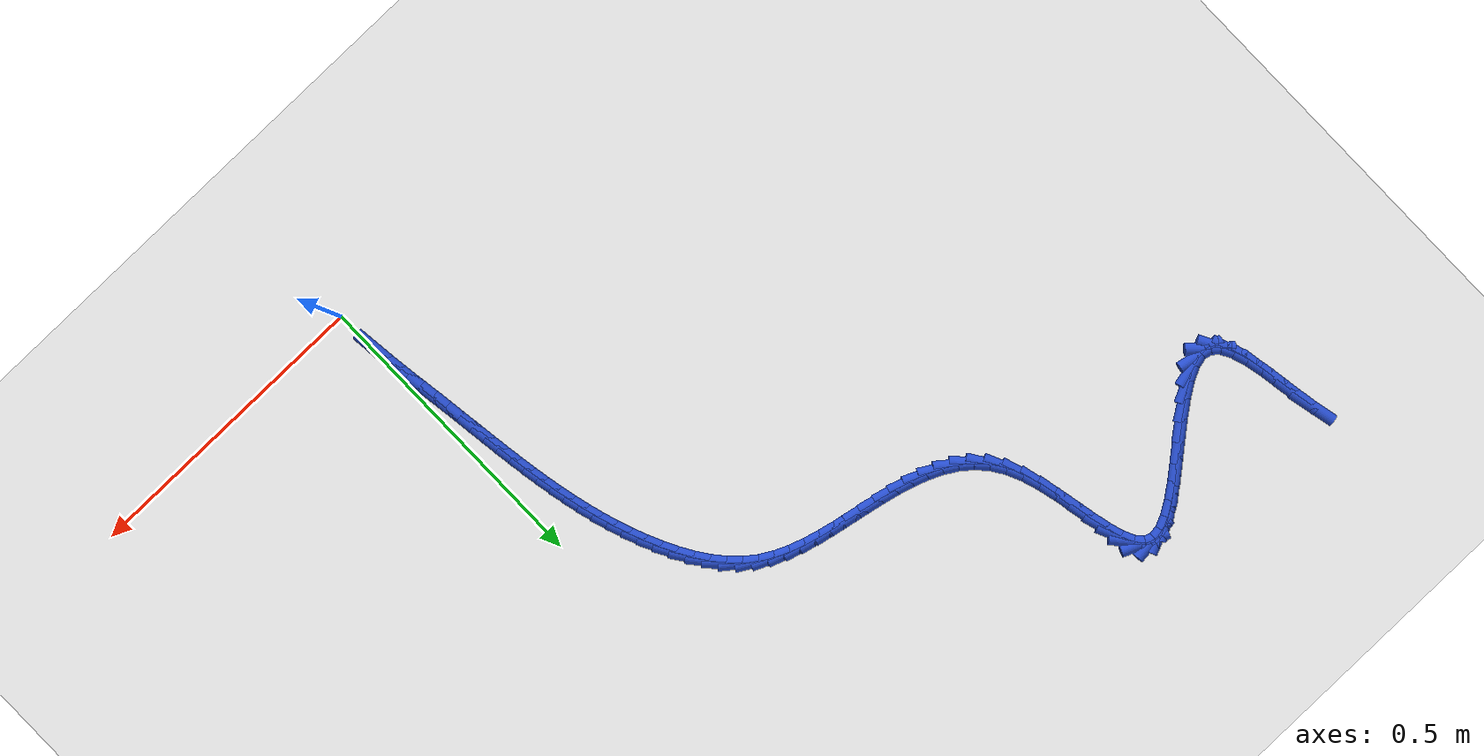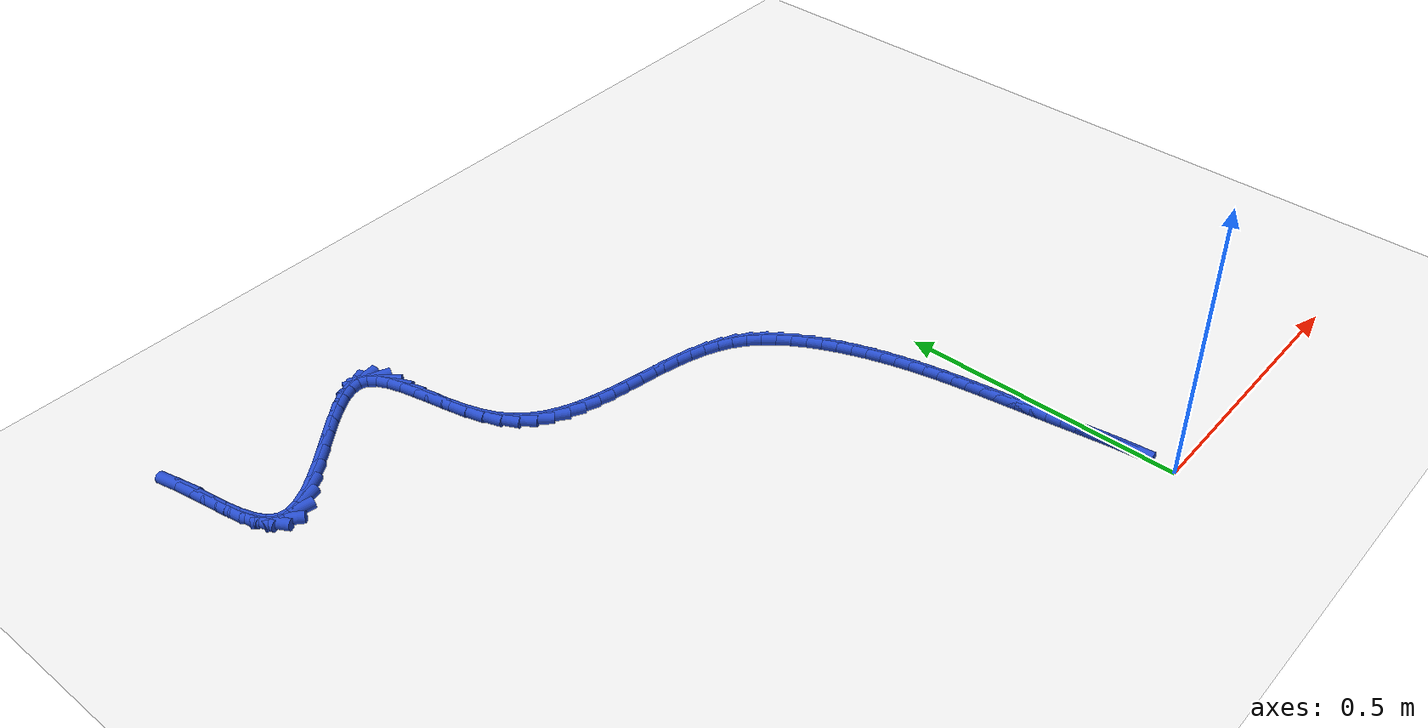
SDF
<sdf version="1.6">
 <world name="default">
  <model name="ground_plane">
   <static>1</static>
   <link name="link">
    <collision name="collision">
     <geometry><plane><normal>0 0 1</normal><size>100 100</size></plane></geometry>
     <surface><friction><ode><mu>100</mu><mu2>50</mu2></ode></friction></surface>
    </collision>
    <visual name="visual">
     <cast_shadows>0</cast_shadows>
     <geometry><plane><normal>0 0 1</normal><size>100 100</size></plane></geometry>
     <material>
      <script><uri>file://media/materials/scripts/gazebo.material</uri><name>Gazebo/WhiteGlow</name></script>
     </material>
    </visual>
   </link>
  </model>
  <model name="line">
   <link name="link_3">
    <pose>-0.004735273473870228 0.07722635135019318 0.01 0 1.57 -1.4588159628600574</pose>
    <collision name="collision">
     <geometry><cylinder><radius>0.01</radius><length>0.08</length></cylinder></geometry>
    </collision>
    <visual name="visual">
     <material>
      <script><name>Gazebo/Blue</name><uri>file://media/materials/scripts/gazebo.material</uri></script>
     </material>
     <geometry><cylinder><radius>0.01</radius><length>0.08</length></cylinder></geometry>
    </visual>
   </link>
   <link name="link_4">
    <pose>-0.007630779874316007 0.1029754500033443 0.01 0 1.57 -1.4424926155566993</pose>
    <collision name="collision">
     <geometry><cylinder><radius>0.01</radius><length>0.08</length></cylinder></geometry>
    </collision>
    <visual name="visual">
     <material>
      <script><name>Gazebo/Blue</name><uri>file://media/materials/scripts/gazebo.material</uri></script>
     </material>
     <geometry><cylinder><radius>0.01</radius><length>0.08</length></cylinder></geometry>
    </visual>
   </link>
   <link name="link_5">
    <pose>-0.010953468855772665 0.1287302499337943 0.01 0 1.57 -1.4315328510096803</pose>
    <collision name="collision">
     <geometry><cylinder><radius>0.01</radius><length>0.08</length></cylinder></geometry>
    </collision>
    <visual name="visual">
     <material>
      <script><name>Gazebo/Blue</name><uri>file://media/materials/scripts/gazebo.material</uri></script>
     </material>
     <geometry><cylinder><radius>0.01</radius><length>0.08</length></cylinder></geometry>
    </visual>
   </link>
   <link name="link_6">
    <pose>-0.014564525394100018 0.15449207744699653 0.01 0 1.57 -1.4258904491077136</pose>
    <collision name="collision">
     <geometry><cylinder><radius>0.01</radius><length>0.08</length></cylinder></geometry>
    </collision>
    <visual name="visual">
     <material>
      <script><name>Gazebo/Blue</name><uri>file://media/materials/scripts/gazebo.material</uri></script>
     </material>
     <geometry><cylinder><radius>0.01</radius><length>0.08</length></cylinder></geometry>
    </visual>
   </link>
   <link name="link_7">
    <pose>-0.01832513446515788 0.18026225884840422 0.01 0 1.57 -1.4255362973416508</pose>
    <collision name="collision">
     <geometry><cylinder><radius>0.01</radius><length>0.08</length></cylinder></geometry>
    </collision>
    <visual name="visual">
     <material>
      <script><name>Gazebo/Blue</name><uri>file://media/materials/scripts/gazebo.material</uri></script>
     </material>
     <geometry><cylinder><radius>0.01</radius><length>0.08</length></cylinder></geometry>
    </visual>
   </link>
   <link name="link_8">
    <pose>-0.02209648104480607 0.20604212044347073 0.01 0 1.57 -1.4300593175898704</pose>
    <collision name="collision">
     <geometry><cylinder><radius>0.01</radius><length>0.08</length></cylinder></geometry>
    </collision>
    <visual name="visual">
     <material>
      <script><name>Gazebo/Blue</name><uri>file://media/materials/scripts/gazebo.material</uri></script>
     </material>
     <geometry><cylinder><radius>0.01</radius><length>0.08</length></cylinder></geometry>
    </visual>
   </link>
   <link name="link_9">
    <pose>-0.025750255485725917 0.23183220384311948 0.01 0 1.57 -1.434548371362645</pose>
    <collision name="collision">
     <geometry><cylinder><radius>0.01</radius><length>0.08</length></cylinder></geometry>
    </collision>
    <visual name="visual">
     <material>
      <script><name>Gazebo/Blue</name><uri>file://media/materials/scripts/gazebo.material</uri></script>
     </material>
     <geometry><cylinder><radius>0.01</radius><length>0.08</length></cylinder></geometry>
    </visual>
   </link>
   <link name="link_10">
    <pose>-0.029286172010129993 0.25762348797129764 0.01 0 1.57 -1.4357179457904505</pose>
    <collision name="collision">
     <geometry><cylinder><radius>0.01</radius><length>0.08</length></cylinder></geometry>
    </collision>
    <visual name="visual">
     <material>
      <script><name>Gazebo/Blue</name><uri>file://media/materials/scripts/gazebo.material</uri></script>
     </material>
     <geometry><cylinder><radius>0.01</radius><length>0.08</length></cylinder></geometry>
    </visual>
   </link>
   <link name="link_11">
    <pose>-0.0327894310130966 0.28340056639963557 0.01 0 1.57 -1.4335013348796353</pose>
    <collision name="collision">
     <geometry><cylinder><radius>0.01</radius><length>0.08</length></cylinder></geometry>
    </collision>
    <visual name="visual">
     <material>
      <script><name>Gazebo/Blue</name><uri>file://media/materials/scripts/gazebo.material</uri></script>
     </material>
     <geometry><cylinder><radius>0.01</radius><length>0.08</length></cylinder></geometry>
    </visual>
   </link>
   <link name="link_12">
    <pose>-0.03634679331964059 0.30914791614413134 0.01 0 1.57 -1.4278890659737389</pose>
    <collision name="collision">
     <geometry><cylinder><radius>0.01</radius><length>0.08</length></cylinder></geometry>
    </collision>
    <visual name="visual">
     <material>
      <script><name>Gazebo/Blue</name><uri>file://media/materials/scripts/gazebo.material</uri></script>
     </material>
     <geometry><cylinder><radius>0.01</radius><length>0.08</length></cylinder></geometry>
    </visual>
   </link>
   <link name="link_13">
    <pose>-0.04004501975477684 0.33485001422078325 0.01 0 1.57 -1.4188697028831119</pose>
    <collision name="collision">
     <geometry><cylinder><radius>0.01</radius><length>0.08</length></cylinder></geometry>
    </collision>
    <visual name="visual">
     <material>
      <script><name>Gazebo/Blue</name><uri>file://media/materials/scripts/gazebo.material</uri></script>
     </material>
     <geometry><cylinder><radius>0.01</radius><length>0.08</length></cylinder></geometry>
    </visual>
   </link>
   <link name="link_14">
    <pose>-0.043970871143520225 0.36049133764558977 0.01 0 1.57 -1.4064317796355033</pose>
    <collision name="collision">
     <geometry><cylinder><radius>0.01</radius><length>0.08</length></cylinder></geometry>
    </collision>
    <visual name="visual">
     <material>
      <script><name>Gazebo/Blue</name><uri>file://media/materials/scripts/gazebo.material</uri></script>
     </material>
     <geometry><cylinder><radius>0.01</radius><length>0.08</length></cylinder></geometry>
    </visual>
   </link>
   <link name="link_15">
    <pose>-0.048211108310885604 0.38605636343454885 0.01 0 1.57 -1.3905669526017241</pose>
    <collision name="collision">
     <geometry><cylinder><radius>0.01</radius><length>0.08</length></cylinder></geometry>
    </collision>
    <visual name="visual">
     <material>
      <script><name>Gazebo/Blue</name><uri>file://media/materials/scripts/gazebo.material</uri></script>
     </material>
     <geometry><cylinder><radius>0.01</radius><length>0.08</length></cylinder></geometry>
    </visual>
   </link>
   <link name="link_16">
    <pose>-0.052852492081887865 0.41152956860365897 0.01 0 1.57 -1.371274387821712</pose>
    <collision name="collision">
     <geometry><cylinder><radius>0.01</radius><length>0.08</length></cylinder></geometry>
    </collision>
    <visual name="visual">
     <material>
      <script><name>Gazebo/Blue</name><uri>file://media/materials/scripts/gazebo.material</uri></script>
     </material>
     <geometry><cylinder><radius>0.01</radius><length>0.08</length></cylinder></geometry>
    </visual>
   </link>
   <link name="link_17">
    <pose>-0.05798178328154187 0.4368954301689182 0.01 0 1.57 -1.3485663591753199</pose>
    <collision name="collision">
     <geometry><cylinder><radius>0.01</radius><length>0.08</length></cylinder></geometry>
    </collision>
    <visual name="visual">
     <material>
      <script><name>Gazebo/Blue</name><uri>file://media/materials/scripts/gazebo.material</uri></script>
     </material>
     <geometry><cylinder><radius>0.01</radius><length>0.08</length></cylinder></geometry>
    </visual>
   </link>
   <link name="link_18">
    <pose>-0.06368574273486247 0.46213842514632475 0.01 0 1.57 -1.3224749528913857</pose>
    <collision name="collision">
     <geometry><cylinder><radius>0.01</radius><length>0.08</length></cylinder></geometry>
    </collision>
    <visual name="visual">
     <material>
      <script><name>Gazebo/Blue</name><uri>file://media/materials/scripts/gazebo.material</uri></script>
     </material>
     <geometry><cylinder><radius>0.01</radius><length>0.08</length></cylinder></geometry>
    </visual>
   </link>
   <link name="link_19">
    <pose>-0.07005113126686455 0.48724303055187707 0.01 0 1.57 -1.2930596469748314</pose>
    <collision name="collision">
     <geometry><cylinder><radius>0.01</radius><length>0.08</length></cylinder></geometry>
    </collision>
    <visual name="visual">
     <material>
      <script><name>Gazebo/Blue</name><uri>file://media/materials/scripts/gazebo.material</uri></script>
     </material>
     <geometry><cylinder><radius>0.01</radius><length>0.08</length></cylinder></geometry>
    </visual>
   </link>
   <link name="link_20">
    <pose>-0.07716470970256303 0.5121937234015734 0.01 0 1.57 -1.2604153596693264</pose>
    <collision name="collision">
     <geometry><cylinder><radius>0.01</radius><length>0.08</length></cylinder></geometry>
    </collision>
    <visual name="visual">
     <material>
      <script><name>Gazebo/Blue</name><uri>file://media/materials/scripts/gazebo.material</uri></script>
     </material>
     <geometry><cylinder><radius>0.01</radius><length>0.08</length></cylinder></geometry>
    </visual>
   </link>
   <link name="link_21">
    <pose>-0.08511323886697272 0.5369749807114119 0.01 0 1.57 -1.2246803508958726</pose>
    <collision name="collision">
     <geometry><cylinder><radius>0.01</radius><length>0.08</length></cylinder></geometry>
    </collision>
    <visual name="visual">
     <material>
      <script><name>Gazebo/Blue</name><uri>file://media/materials/scripts/gazebo.material</uri></script>
     </material>
     <geometry><cylinder><radius>0.01</radius><length>0.08</length></cylinder></geometry>
    </visual>
   </link>
   <link name="link_22">
    <pose>-0.09398347958510848 0.5615712794973908 0.01 0 1.57 -1.1860431448297077</pose>
    <collision name="collision">
     <geometry><cylinder><radius>0.01</radius><length>0.08</length></cylinder></geometry>
    </collision>
    <visual name="visual">
     <material>
      <script><name>Gazebo/Blue</name><uri>file://media/materials/scripts/gazebo.material</uri></script>
     </material>
     <geometry><cylinder><radius>0.01</radius><length>0.08</length></cylinder></geometry>
    </visual>
   </link>
   <link name="link_23">
    <pose>-0.10386219268198521 0.5859670967755084 0.01 0 1.57 -1.144584126258298</pose>
    <collision name="collision">
     <geometry><cylinder><radius>0.01</radius><length>0.08</length></cylinder></geometry>
    </collision>
    <visual name="visual">
     <material>
      <script><name>Gazebo/Blue</name><uri>file://media/materials/scripts/gazebo.material</uri></script>
     </material>
     <geometry><cylinder><radius>0.01</radius><length>0.08</length></cylinder></geometry>
    </visual>
   </link>
   <link name="link_24">
    <pose>-0.11483722571845668 0.6101388116421479 0.01 0 1.57 -1.0965347804306003</pose>
    <collision name="collision">
     <geometry><cylinder><radius>0.01</radius><length>0.08</length></cylinder></geometry>
    </collision>
    <visual name="visual">
     <material>
      <script><name>Gazebo/Blue</name><uri>file://media/materials/scripts/gazebo.material</uri></script>
     </material>
     <geometry><cylinder><radius>0.01</radius><length>0.08</length></cylinder></geometry>
    </visual>
   </link>
   <link name="link_25">
    <pose>-0.12702169165128144 0.6338745355965881 0.01 0 1.57 -1.0370387465355602</pose>
    <collision name="collision">
     <geometry><cylinder><radius>0.01</radius><length>0.08</length></cylinder></geometry>
    </collision>
    <visual name="visual">
     <material>
      <script><name>Gazebo/Blue</name><uri>file://media/materials/scripts/gazebo.material</uri></script>
     </material>
     <geometry><cylinder><radius>0.01</radius><length>0.08</length></cylinder></geometry>
    </visual>
   </link>
   <link name="link_26">
    <pose>-0.14055412001495723 0.656772985994607 0.01 0 1.57 -0.9643003962133214</pose>
    <collision name="collision">
     <geometry><cylinder><radius>0.01</radius><length>0.08</length></cylinder></geometry>
    </collision>
    <visual name="visual">
     <material>
      <script><name>Gazebo/Blue</name><uri>file://media/materials/scripts/gazebo.material</uri></script>
     </material>
     <geometry><cylinder><radius>0.01</radius><length>0.08</length></cylinder></geometry>
    </visual>
   </link>
   <link name="link_27">
    <pose>-0.15557415731652494 0.6784245569605744 0.01 0 1.57 -0.8765091758855857</pose>
    <collision name="collision">
     <geometry><cylinder><radius>0.01</radius><length>0.08</length></cylinder></geometry>
    </collision>
    <visual name="visual">
     <material>
      <script><name>Gazebo/Blue</name><uri>file://media/materials/scripts/gazebo.material</uri></script>
     </material>
     <geometry><cylinder><radius>0.01</radius><length>0.08</length></cylinder></geometry>
    </visual>
   </link>
   <link name="link_28">
    <pose>-0.17222145006302572 0.6984196426188605 0.01 0 1.57 -0.7720484433847453</pose>
    <collision name="collision">
     <geometry><cylinder><radius>0.01</radius><length>0.08</length></cylinder></geometry>
    </collision>
    <visual name="visual">
     <material>
      <script><name>Gazebo/Blue</name><uri>file://media/materials/scripts/gazebo.material</uri></script>
     </material>
     <geometry><cylinder><radius>0.01</radius><length>0.08</length></cylinder></geometry>
    </visual>
   </link>
   <link name="link_29">
    <pose>-0.1906356447615004 0.7163486370938352 0.01 0 1.57 -0.6502314944295363</pose>
    <collision name="collision">
     <geometry><cylinder><radius>0.01</radius><length>0.08</length></cylinder></geometry>
    </collision>
    <visual name="visual">
     <material>
      <script><name>Gazebo/Blue</name><uri>file://media/materials/scripts/gazebo.material</uri></script>
     </material>
     <geometry><cylinder><radius>0.01</radius><length>0.08</length></cylinder></geometry>
    </visual>
   </link>
   <link name="link_30">
    <pose>-0.21095560658239632 0.7318033851926395 0.01 0 1.57 -0.5229237221968535</pose>
    <collision name="collision">
     <geometry><cylinder><radius>0.01</radius><length>0.08</length></cylinder></geometry>
    </collision>
    <visual name="visual">
     <material>
      <script><name>Gazebo/Blue</name><uri>file://media/materials/scripts/gazebo.material</uri></script>
     </material>
     <geometry><cylinder><radius>0.01</radius><length>0.08</length></cylinder></geometry>
    </visual>
   </link>
   <link name="link_31">
    <pose>-0.23318879074318358 0.7446197163972538 0.01 0 1.57 -0.41536183510269686</pose>
    <collision name="collision">
     <geometry><cylinder><radius>0.01</radius><length>0.08</length></cylinder></geometry>
    </collision>
    <visual name="visual">
     <material>
      <script><name>Gazebo/Blue</name><uri>file://media/materials/scripts/gazebo.material</uri></script>
     </material>
     <geometry><cylinder><radius>0.01</radius><length>0.08</length></cylinder></geometry>
    </visual>
   </link>
   <link name="link_32">
    <pose>-0.25706471528446667 0.7551494972948176 0.01 0 1.57 -0.3308768605326395</pose>
    <collision name="collision">
     <geometry><cylinder><radius>0.01</radius><length>0.08</length></cylinder></geometry>
    </collision>
    <visual name="visual">
     <material>
      <script><name>Gazebo/Blue</name><uri>file://media/materials/scripts/gazebo.material</uri></script>
     </material>
     <geometry><cylinder><radius>0.01</radius><length>0.08</length></cylinder></geometry>
    </visual>
   </link>
   <link name="link_33">
    <pose>-0.2822775476837907 0.7638102287371364 0.01 0 1.57 -0.26808662233687364</pose>
    <collision name="collision">
     <geometry><cylinder><radius>0.01</radius><length>0.08</length></cylinder></geometry>
    </collision>
    <visual name="visual">
     <material>
      <script><name>Gazebo/Blue</name><uri>file://media/materials/scripts/gazebo.material</uri></script>
     </material>
     <geometry><cylinder><radius>0.01</radius><length>0.08</length></cylinder></geometry>
    </visual>
   </link>
   <link name="link_34">
    <pose>-0.3085214554187006 0.7710194115760153 0.01 0 1.57 -0.22509022364306017</pose>
    <collision name="collision">
     <geometry><cylinder><radius>0.01</radius><length>0.08</length></cylinder></geometry>
    </collision>
    <visual name="visual">
     <material>
      <script><name>Gazebo/Blue</name><uri>file://media/materials/scripts/gazebo.material</uri></script>
     </material>
     <geometry><cylinder><radius>0.01</radius><length>0.08</length></cylinder></geometry>
    </visual>
   </link>
   <link name="link_35">
    <pose>-0.3354906059667416 0.777194546663259 0.01 0 1.57 -0.2002332795812609</pose>
    <collision name="collision">
     <geometry><cylinder><radius>0.01</radius><length>0.08</length></cylinder></geometry>
    </collision>
    <visual name="visual">
     <material>
      <script><name>Gazebo/Blue</name><uri>file://media/materials/scripts/gazebo.material</uri></script>
     </material>
     <geometry><cylinder><radius>0.01</radius><length>0.08</length></cylinder></geometry>
    </visual>
   </link>
   <link name="link_36">
    <pose>-0.3628791668054589 0.7827531348506732 0.01 0 1.57 -0.19246505629929442</pose>
    <collision name="collision">
     <geometry><cylinder><radius>0.01</radius><length>0.08</length></cylinder></geometry>
    </collision>
    <visual name="visual">
     <material>
      <script><name>Gazebo/Blue</name><uri>file://media/materials/scripts/gazebo.material</uri></script>
     </material>
     <geometry><cylinder><radius>0.01</radius><length>0.08</length></cylinder></geometry>
    </visual>
   </link>
   <link name="link_37">
    <pose>-0.39038130541239763 0.7881126769900628 0.01 0 1.57 -0.20147709216322968</pose>
    <collision name="collision">
     <geometry><cylinder><radius>0.01</radius><length>0.08</length></cylinder></geometry>
    </collision>
    <visual name="visual">
     <material>
      <script><name>Gazebo/Blue</name><uri>file://media/materials/scripts/gazebo.material</uri></script>
     </material>
     <geometry><cylinder><radius>0.01</radius><length>0.08</length></cylinder></geometry>
    </visual>
   </link>
   <link name="link_38">
    <pose>-0.4176911892651026 0.793690673933233 0.01 0 1.57 -0.22774110966531572</pose>
    <collision name="collision">
     <geometry><cylinder><radius>0.01</radius><length>0.08</length></cylinder></geometry>
    </collision>
    <visual name="visual">
     <material>
      <script><name>Gazebo/Blue</name><uri>file://media/materials/scripts/gazebo.material</uri></script>
     </material>
     <geometry><cylinder><radius>0.01</radius><length>0.08</length></cylinder></geometry>
    </visual>
   </link>
   <link name="link_39">
    <pose>-0.44450298584111936 0.7999046265319889 0.01 0 1.57 -0.27248106619999063</pose>
    <collision name="collision">
     <geometry><cylinder><radius>0.01</radius><length>0.08</length></cylinder></geometry>
    </collision>
    <visual name="visual">
     <material>
      <script><name>Gazebo/Blue</name><uri>file://media/materials/scripts/gazebo.material</uri></script>
     </material>
     <geometry><cylinder><radius>0.01</radius><length>0.08</length></cylinder></geometry>
    </visual>
   </link>
   <link name="link_40">
    <pose>-0.4705108626179928 0.8071720356381353 0.01 0 1.57 -0.3375341134608561</pose>
    <collision name="collision">
     <geometry><cylinder><radius>0.01</radius><length>0.08</length></cylinder></geometry>
    </collision>
    <visual name="visual">
     <material>
      <script><name>Gazebo/Blue</name><uri>file://media/materials/scripts/gazebo.material</uri></script>
     </material>
     <geometry><cylinder><radius>0.01</radius><length>0.08</length></cylinder></geometry>
    </visual>
   </link>
   <link name="link_41">
    <pose>-0.49540898707326814 0.8159104021034782 0.01 0 1.57 -0.4249654628243723</pose>
    <collision name="collision">
     <geometry><cylinder><radius>0.01</radius><length>0.08</length></cylinder></geometry>
    </collision>
    <visual name="visual">
     <material>
      <script><name>Gazebo/Blue</name><uri>file://media/materials/scripts/gazebo.material</uri></script>
     </material>
     <geometry><cylinder><radius>0.01</radius><length>0.08</length></cylinder></geometry>
    </visual>
   </link>
   <link name="link_42">
    <pose>-0.5188915266844903 0.8265372267798221 0.01 0 1.57 -0.536222835143369</pose>
    <collision name="collision">
     <geometry><cylinder><radius>0.01</radius><length>0.08</length></cylinder></geometry>
    </collision>
    <visual name="visual">
     <material>
      <script><name>Gazebo/Blue</name><uri>file://media/materials/scripts/gazebo.material</uri></script>
     </material>
     <geometry><cylinder><radius>0.01</radius><length>0.08</length></cylinder></geometry>
    </visual>
   </link>
   <link name="link_43">
    <pose>-0.5406526489292046 0.8394700105189723 0.01 0 1.57 -0.6706845842611207</pose>
    <collision name="collision">
     <geometry><cylinder><radius>0.01</radius><length>0.08</length></cylinder></geometry>
    </collision>
    <visual name="visual">
     <material>
      <script><name>Gazebo/Blue</name><uri>file://media/materials/scripts/gazebo.material</uri></script>
     </material>
     <geometry><cylinder><radius>0.01</radius><length>0.08</length></cylinder></geometry>
    </visual>
   </link>
   <link name="link_44">
    <pose>-0.5603865212849561 0.8551262541727339 0.01 0 1.57 -0.8239561665728614</pose>
    <collision name="collision">
     <geometry><cylinder><radius>0.01</radius><length>0.08</length></cylinder></geometry>
    </collision>
    <visual name="visual">
     <material>
      <script><name>Gazebo/Blue</name><uri>file://media/materials/scripts/gazebo.material</uri></script>
     </material>
     <geometry><cylinder><radius>0.01</radius><length>0.08</length></cylinder></geometry>
    </visual>
   </link>
   <link name="link_45">
    <pose>-0.5777873112292901 0.8739234585929123 0.01 0 1.57 -0.9872010220546819</pose>
    <collision name="collision">
     <geometry><cylinder><radius>0.01</radius><length>0.08</length></cylinder></geometry>
    </collision>
    <visual name="visual">
     <material>
      <script><name>Gazebo/Blue</name><uri>file://media/materials/scripts/gazebo.material</uri></script>
     </material>
     <geometry><cylinder><radius>0.01</radius><length>0.08</length></cylinder></geometry>
    </visual>
   </link>
   <link name="link_46">
    <pose>-0.5925491862397513 0.8962791246313124 0.01 0 1.57 -1.1441873027081468</pose>
    <collision name="collision">
     <geometry><cylinder><radius>0.01</radius><length>0.08</length></cylinder></geometry>
    </collision>
    <visual name="visual">
     <material>
      <script><name>Gazebo/Blue</name><uri>file://media/materials/scripts/gazebo.material</uri></script>
     </material>
     <geometry><cylinder><radius>0.01</radius><length>0.08</length></cylinder></geometry>
    </visual>
   </link>
   <link name="link_47">
    <pose>-0.6044505152647952 0.9224633322063294 0.01 0 1.57 -1.257912851594964</pose>
    <collision name="collision">
     <geometry><cylinder><radius>0.01</radius><length>0.08</length></cylinder></geometry>
    </collision>
    <visual name="visual">
     <material>
      <script><name>Gazebo/Blue</name><uri>file://media/materials/scripts/gazebo.material</uri></script>
     </material>
     <geometry><cylinder><radius>0.01</radius><length>0.08</length></cylinder></geometry>
    </visual>
   </link>
   <link name="link_48">
    <pose>-0.6138937971129101 0.9516534272788523 0.01 0 1.57 -1.3274149270042646</pose>
    <collision name="collision">
     <geometry><cylinder><radius>0.01</radius><length>0.08</length></cylinder></geometry>
    </collision>
    <visual name="visual">
     <material>
      <script><name>Gazebo/Blue</name><uri>file://media/materials/scripts/gazebo.material</uri></script>
     </material>
     <geometry><cylinder><radius>0.01</radius><length>0.08</length></cylinder></geometry>
    </visual>
   </link>
   <link name="link_49">
    <pose>-0.6215619844931102 0.9825357337961745 0.01 0 1.57 -1.3634028053142357</pose>
    <collision name="collision">
     <geometry><cylinder><radius>0.01</radius><length>0.08</length></cylinder></geometry>
    </collision>
    <visual name="visual">
     <material>
      <script><name>Gazebo/Blue</name><uri>file://media/materials/scripts/gazebo.material</uri></script>
     </material>
     <geometry><cylinder><radius>0.01</radius><length>0.08</length></cylinder></geometry>
    </visual>
   </link>
   <link name="link_50">
    <pose>-0.628139368449632 1.0137942325324154 0.01 0 1.57 -1.3700052944942394</pose>
    <collision name="collision">
     <geometry><cylinder><radius>0.01</radius><length>0.08</length></cylinder></geometry>
    </collision>
    <visual name="visual">
     <material>
      <script><name>Gazebo/Blue</name><uri>file://media/materials/scripts/gazebo.material</uri></script>
     </material>
     <geometry><cylinder><radius>0.01</radius><length>0.08</length></cylinder></geometry>
    </visual>
   </link>
   <link name="link_51">
    <pose>-0.6343102400267131 1.044112904261694 0.01 0 1.57 -1.3449242299833537</pose>
    <collision name="collision">
     <geometry><cylinder><radius>0.01</radius><length>0.08</length></cylinder></geometry>
    </collision>
    <visual name="visual">
     <material>
      <script><name>Gazebo/Blue</name><uri>file://media/materials/scripts/gazebo.material</uri></script>
     </material>
     <geometry><cylinder><radius>0.01</radius><length>0.08</length></cylinder></geometry>
    </visual>
   </link>
   <link name="link_52">
    <pose>-0.6407588902685908 1.0721757297581296 0.01 0 1.57 -1.2769650693977275</pose>
    <collision name="collision">
     <geometry><cylinder><radius>0.01</radius><length>0.08</length></cylinder></geometry>
    </collision>
    <visual name="visual">
     <material>
      <script><name>Gazebo/Blue</name><uri>file://media/materials/scripts/gazebo.material</uri></script>
     </material>
     <geometry><cylinder><radius>0.01</radius><length>0.08</length></cylinder></geometry>
    </visual>
   </link>
   <link name="link_53">
    <pose>-0.6481696102195021 1.096666689795842 0.01 0 1.57 -1.1379887968928584</pose>
    <collision name="collision">
     <geometry><cylinder><radius>0.01</radius><length>0.08</length></cylinder></geometry>
    </collision>
    <visual name="visual">
     <material>
      <script><name>Gazebo/Blue</name><uri>file://media/materials/scripts/gazebo.material</uri></script>
     </material>
     <geometry><cylinder><radius>0.01</radius><length>0.08</length></cylinder></geometry>
    </visual>
   </link>
   <link name="link_54">
    <pose>-0.6572266909236844 1.1162697651489504 0.01 0 1.57 -0.8663699969377535</pose>
    <collision name="collision">
     <geometry><cylinder><radius>0.01</radius><length>0.08</length></cylinder></geometry>
    </collision>
    <visual name="visual">
     <material>
      <script><name>Gazebo/Blue</name><uri>file://media/materials/scripts/gazebo.material</uri></script>
     </material>
     <geometry><cylinder><radius>0.01</radius><length>0.08</length></cylinder></geometry>
    </visual>
   </link>
   <link name="link_55">
    <pose>-0.6686144234253746 1.1296689365915744 0.01 0 1.57 -0.3878283134372157</pose>
    <collision name="collision">
     <geometry><cylinder><radius>0.01</radius><length>0.08</length></cylinder></geometry>
    </collision>
    <visual name="visual">
     <material>
      <script><name>Gazebo/Blue</name><uri>file://media/materials/scripts/gazebo.material</uri></script>
     </material>
     <geometry><cylinder><radius>0.01</radius><length>0.08</length></cylinder></geometry>
    </visual>
   </link>
   <link name="link_56">
    <pose>-0.683015350493324 1.1355519823967175 0.01 0 1.57 0.12107804830215767</pose>
    <collision name="collision">
     <geometry><cylinder><radius>0.01</radius><length>0.08</length></cylinder></geometry>
    </collision>
    <visual name="visual">
     <material>
      <script><name>Gazebo/Blue</name><uri>file://media/materials/scripts/gazebo.material</uri></script>
     </material>
     <geometry><cylinder><radius>0.01</radius><length>0.08</length></cylinder></geometry>
    </visual>
   </link>
   <link name="link_57">
    <pose>-0.7007494523329277 1.133394217436345 0.01 0 1.57 0.4111846352251826</pose>
    <collision name="collision">
     <geometry><cylinder><radius>0.01</radius><length>0.08</length></cylinder></geometry>
    </collision>
    <visual name="visual">
     <material>
      <script><name>Gazebo/Blue</name><uri>file://media/materials/scripts/gazebo.material</uri></script>
     </material>
     <geometry><cylinder><radius>0.01</radius><length>0.08</length></cylinder></geometry>
    </visual>
   </link>
   <link name="link_58">
    <pose>-0.7213317127092982 1.1244195214449506 0.01 0 1.57 0.5604641448945676</pose>
    <collision name="collision">
     <geometry><cylinder><radius>0.01</radius><length>0.08</length></cylinder></geometry>
    </collision>
    <visual name="visual">
     <material>
      <script><name>Gazebo/Blue</name><uri>file://media/materials/scripts/gazebo.material</uri></script>
     </material>
     <geometry><cylinder><radius>0.01</radius><length>0.08</length></cylinder></geometry>
    </visual>
   </link>
   <link name="link_59">
    <pose>-0.7441688003528001 1.1100870495624433 0.01 0 1.57 0.6397589733849699</pose>
    <collision name="collision">
     <geometry><cylinder><radius>0.01</radius><length>0.08</length></cylinder></geometry>
    </collision>
    <visual name="visual">
     <material>
      <script><name>Gazebo/Blue</name><uri>file://media/materials/scripts/gazebo.material</uri></script>
     </material>
     <geometry><cylinder><radius>0.01</radius><length>0.08</length></cylinder></geometry>
    </visual>
   </link>
   <link name="link_60">
    <pose>-0.768667383993798 1.0918559569287305 0.01 0 1.57 0.6798986891462775</pose>
    <collision name="collision">
     <geometry><cylinder><radius>0.01</radius><length>0.08</length></cylinder></geometry>
    </collision>
    <visual name="visual">
     <material>
      <script><name>Gazebo/Blue</name><uri>file://media/materials/scripts/gazebo.material</uri></script>
     </material>
     <geometry><cylinder><radius>0.01</radius><length>0.08</length></cylinder></geometry>
    </visual>
   </link>
   <link name="link_61">
    <pose>-0.794234132362657 1.0711853986837212 0.01 0 1.57 0.6935938818047802</pose>
    <collision name="collision">
     <geometry><cylinder><radius>0.01</radius><length>0.08</length></cylinder></geometry>
    </collision>
    <visual name="visual">
     <material>
      <script><name>Gazebo/Blue</name><uri>file://media/materials/scripts/gazebo.material</uri></script>
     </material>
     <geometry><cylinder><radius>0.01</radius><length>0.08</length></cylinder></geometry>
    </visual>
   </link>
   <link name="link_62">
    <pose>-0.8202757141897414 1.0495345299673235 0.01 0 1.57 0.6848560830334747</pose>
    <collision name="collision">
     <geometry><cylinder><radius>0.01</radius><length>0.08</length></cylinder></geometry>
    </collision>
    <visual name="visual">
     <material>
      <script><name>Gazebo/Blue</name><uri>file://media/materials/scripts/gazebo.material</uri></script>
     </material>
     <geometry><cylinder><radius>0.01</radius><length>0.08</length></cylinder></geometry>
    </visual>
   </link>
   <link name="link_63">
    <pose>-0.8461987982054161 1.0283625059194457 0.01 0 1.57 0.6517150901685885</pose>
    <collision name="collision">
     <geometry><cylinder><radius>0.01</radius><length>0.08</length></cylinder></geometry>
    </collision>
    <visual name="visual">
     <material>
      <script><name>Gazebo/Blue</name><uri>file://media/materials/scripts/gazebo.material</uri></script>
     </material>
     <geometry><cylinder><radius>0.01</radius><length>0.08</length></cylinder></geometry>
    </visual>
   </link>
   <link name="link_64">
    <pose>-0.8714100531400458 1.009128481679996 0.01 0 1.57 0.585085739823886</pose>
    <collision name="collision">
     <geometry><cylinder><radius>0.01</radius><length>0.08</length></cylinder></geometry>
    </collision>
    <visual name="visual">
     <material>
      <script><name>Gazebo/Blue</name><uri>file://media/materials/scripts/gazebo.material</uri></script>
     </material>
     <geometry><cylinder><radius>0.01</radius><length>0.08</length></cylinder></geometry>
    </visual>
   </link>
   <link name="link_65">
    <pose>-0.8953161477239951 0.9932916123888826 0.01 0 1.57 0.4628023703407595</pose>
    <collision name="collision">
     <geometry><cylinder><radius>0.01</radius><length>0.08</length></cylinder></geometry>
    </collision>
    <visual name="visual">
     <material>
      <script><name>Gazebo/Blue</name><uri>file://media/materials/scripts/gazebo.material</uri></script>
     </material>
     <geometry><cylinder><radius>0.01</radius><length>0.08</length></cylinder></geometry>
    </visual>
   </link>
   <link name="link_66">
    <pose>-0.9173237506876288 0.9823110531860142 0.01 0 1.57 0.2346390988152706</pose>
    <collision name="collision">
     <geometry><cylinder><radius>0.01</radius><length>0.08</length></cylinder></geometry>
    </collision>
    <visual name="visual">
     <material>
      <script><name>Gazebo/Blue</name><uri>file://media/materials/scripts/gazebo.material</uri></script>
     </material>
     <geometry><cylinder><radius>0.01</radius><length>0.08</length></cylinder></geometry>
    </visual>
   </link>
   <link name="link_67">
    <pose>-0.9368395307613114 0.9776459592112987 0.01 0 1.57 -0.18696353289750223</pose>
    <collision name="collision">
     <geometry><cylinder><radius>0.01</radius><length>0.08</length></cylinder></geometry>
    </collision>
    <visual name="visual">
     <material>
      <script><name>Gazebo/Blue</name><uri>file://media/materials/scripts/gazebo.material</uri></script>
     </material>
     <geometry><cylinder><radius>0.01</radius><length>0.08</length></cylinder></geometry>
    </visual>
   </link>
   <link name="link_68">
    <pose>-0.953270642931737 0.98075428016921 0.01 0 1.57 -0.7267197649322065</pose>
    <collision name="collision">
     <geometry><cylinder><radius>0.01</radius><length>0.08</length></cylinder></geometry>
    </collision>
    <visual name="visual">
     <material>
      <script><name>Gazebo/Blue</name><uri>file://media/materials/scripts/gazebo.material</uri></script>
     </material>
     <geometry><cylinder><radius>0.01</radius><length>0.08</length></cylinder></geometry>
    </visual>
   </link>
   <link name="link_69">
    <pose>-0.9663215620567284 0.9923569061376099 0.01 0 1.57 -1.0752739177945363</pose>
    <collision name="collision">
     <geometry><cylinder><radius>0.01</radius><length>0.08</length></cylinder></geometry>
    </collision>
    <visual name="visual">
     <material>
      <script><name>Gazebo/Blue</name><uri>file://media/materials/scripts/gazebo.material</uri></script>
     </material>
     <geometry><cylinder><radius>0.01</radius><length>0.08</length></cylinder></geometry>
    </visual>
   </link>
   <link name="link_70">
    <pose>-0.9764988817720812 1.0111862648533028 0.01 0 1.57 -1.2567178744612857</pose>
    <collision name="collision">
     <geometry><cylinder><radius>0.01</radius><length>0.08</length></cylinder></geometry>
    </collision>
    <visual name="visual">
     <material>
      <script><name>Gazebo/Blue</name><uri>file://media/materials/scripts/gazebo.material</uri></script>
     </material>
     <geometry><cylinder><radius>0.01</radius><length>0.08</length></cylinder></geometry>
    </visual>
   </link>
   <link name="link_71">
    <pose>-0.9844431097924018 1.035642809400504 0.01 0 1.57 -1.3513973254961056</pose>
    <collision name="collision">
     <geometry><cylinder><radius>0.01</radius><length>0.08</length></cylinder></geometry>
    </collision>
    <visual name="visual">
     <material>
      <script><name>Gazebo/Blue</name><uri>file://media/materials/scripts/gazebo.material</uri></script>
     </material>
     <geometry><cylinder><radius>0.01</radius><length>0.08</length></cylinder></geometry>
    </visual>
   </link>
   <link name="link_72">
    <pose>-0.990794753832297 1.0641269928634276 0.01 0 1.57 -1.3978670858803512</pose>
    <collision name="collision">
     <geometry><cylinder><radius>0.01</radius><length>0.08</length></cylinder></geometry>
    </collision>
    <visual name="visual">
     <material>
      <script><name>Gazebo/Blue</name><uri>file://media/materials/scripts/gazebo.material</uri></script>
     </material>
     <geometry><cylinder><radius>0.01</radius><length>0.08</length></cylinder></geometry>
    </visual>
   </link>
   <link name="link_73">
    <pose>-0.9961943216063738 1.095039268326289 0.01 0 1.57 -1.411850234811686</pose>
    <collision name="collision">
     <geometry><cylinder><radius>0.01</radius><length>0.08</length></cylinder></geometry>
    </collision>
    <visual name="visual">
     <material>
      <script><name>Gazebo/Blue</name><uri>file://media/materials/scripts/gazebo.material</uri></script>
     </material>
     <geometry><cylinder><radius>0.01</radius><length>0.08</length></cylinder></geometry>
    </visual>
   </link>
   <link name="link_74">
    <pose>-1.0012823208292378 1.126780088873302 0.01 0 1.57 -1.3976377556439792</pose>
    <collision name="collision">
     <geometry><cylinder><radius>0.01</radius><length>0.08</length></cylinder></geometry>
    </collision>
    <visual name="visual">
     <material>
      <script><name>Gazebo/Blue</name><uri>file://media/materials/scripts/gazebo.material</uri></script>
     </material>
     <geometry><cylinder><radius>0.01</radius><length>0.08</length></cylinder></geometry>
    </visual>
   </link>
   <link name="link_75">
    <pose>-1.0066992592154962 1.1577499075886817 0.01 0 1.57 -1.35109495220463</pose>
    <collision name="collision">
     <geometry><cylinder><radius>0.01</radius><length>0.08</length></cylinder></geometry>
    </collision>
    <visual name="visual">
     <material>
      <script><name>Gazebo/Blue</name><uri>file://media/materials/scripts/gazebo.material</uri></script>
     </material>
     <geometry><cylinder><radius>0.01</radius><length>0.08</length></cylinder></geometry>
    </visual>
   </link>
  </model>
 </world>
</sdf>
